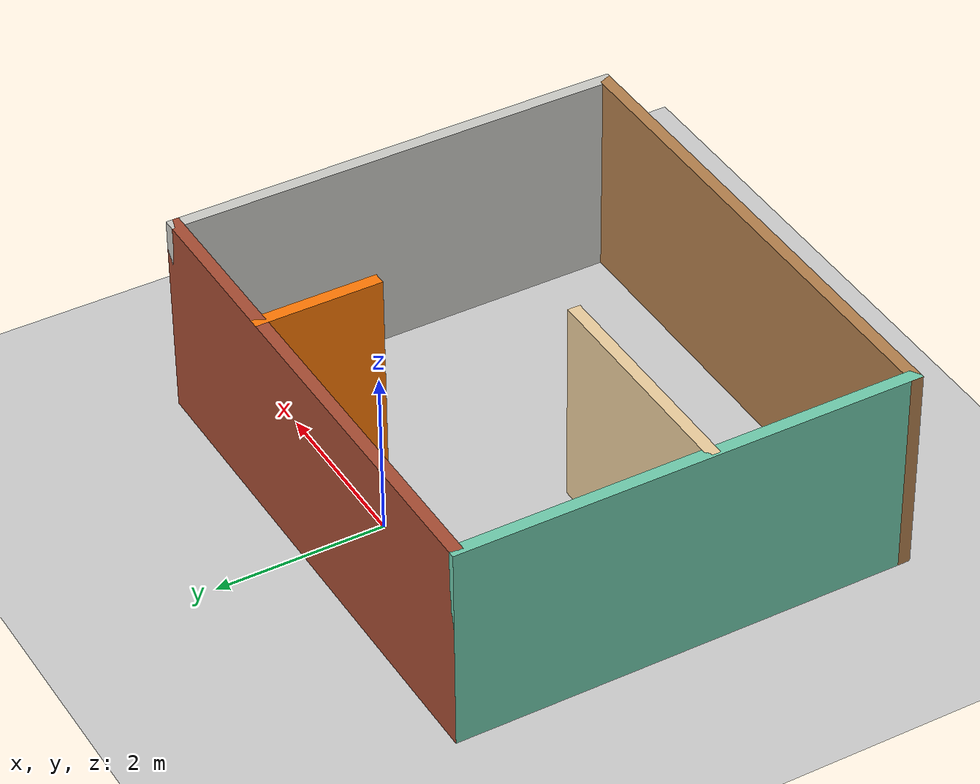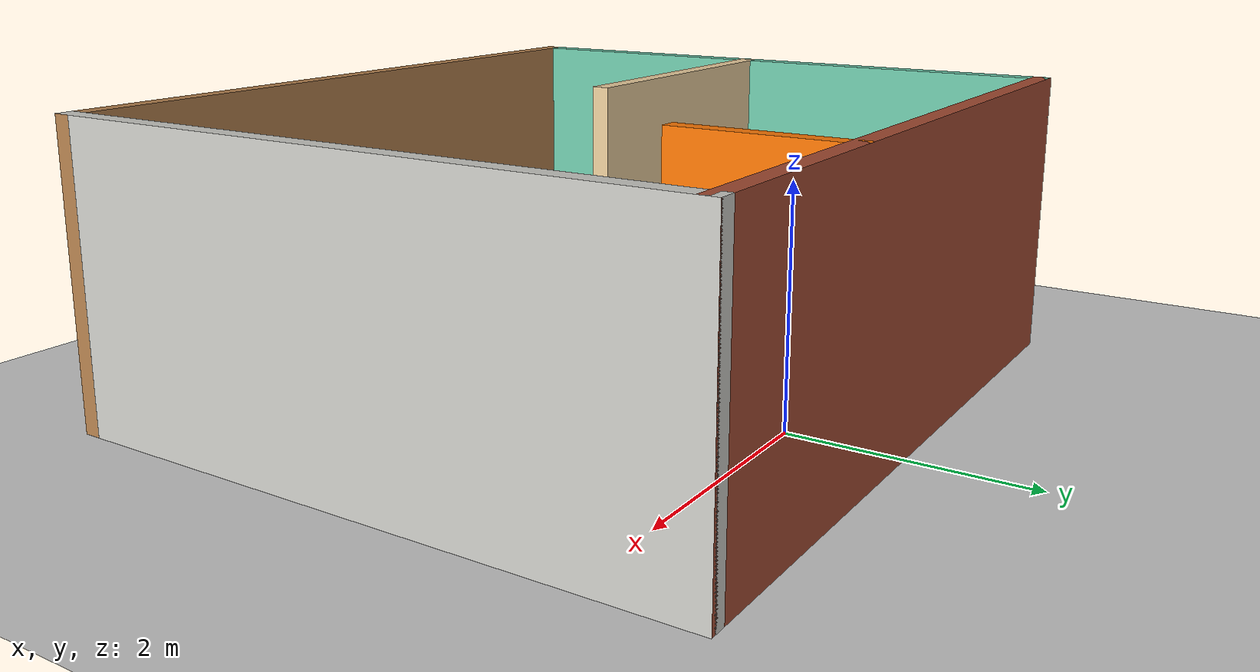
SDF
<sdf version="1.7">
 <world name="default">
  <light name="sun" type="directional">
   <pose>0 0 10 0 -0 0</pose>
   <diffuse>0.8 0.8 0.8 1</diffuse>
   <specular>0.2 0.2 0.2 1</specular>
   <attenuation>
    <range>1000</range>
    <constant>0.9</constant>
    <linear>0.01</linear>
    <quadratic>0.001</quadratic>
   </attenuation>
   <direction>-0.5 0.1 -0.9</direction>
   <spot><inner_angle>0</inner_angle><outer_angle>0</outer_angle><falloff>0</falloff></spot>
  </light>
  <model name="ground_plane">
   <static>1</static>
   <link name="link">
    <collision name="collision">
     <geometry><plane><normal>0 0 1</normal><size>100 100</size></plane></geometry>
     <surface>
      <contact><collide_bitmask>65535</collide_bitmask></contact>
      <friction><ode><mu>100</mu><mu2>50</mu2></ode></friction>
     </surface>
    </collision>
    <visual name="visual">
     <cast_shadows>0</cast_shadows>
     <geometry><plane><normal>0 0 1</normal><size>100 100</size></plane></geometry>
     <material>
      <script><uri>file://media/materials/scripts/gazebo.material</uri><name>Gazebo/Grey</name></script>
     </material>
    </visual>
   </link>
  </model>
  <gravity>0 0 -9.8</gravity>
  <magnetic_field>6e-06 2.3e-05 -4.2e-05</magnetic_field>
  <atmosphere type="adiabatic"/>
  <physics type="ode">
   <max_step_size>0.001</max_step_size>
   <real_time_factor>1</real_time_factor>
   <real_time_update_rate>1000</real_time_update_rate>
  </physics>
  <scene><ambient>0.4 0.4 0.4 1</ambient><background>0.7 0.7 0.7 1</background><shadows>1</shadows></scene>
  <audio><device>default</device></audio>
  <spherical_coordinates>
   <surface_model>EARTH_WGS84</surface_model>
   <latitude_deg>0</latitude_deg>
   <longitude_deg>0</longitude_deg>
   <elevation>0</elevation>
   <heading_deg>0</heading_deg>
  </spherical_coordinates>
  <model name="Untitled_0">
   <pose>-0.156988 -1.78325 0 0 -0 0</pose>
   <link name="Wall_10">
    <collision name="Wall_10_Collision">
     <geometry><box><size>6.25 0.15 2.5</size></box></geometry>
     <pose>0 0 1.25 0 -0 0</pose>
    </collision>
    <visual name="Wall_10_Visual">
     <pose>0 0 1.25 0 -0 0</pose>
     <geometry><box><size>6.25 0.15 2.5</size></box></geometry>
     <material>
      <script><uri>file://media/materials/scripts/gazebo.material</uri><name>Gazebo/Bricks</name></script>
      <ambient>1 1 1 1</ambient>
     </material>
     <meta><layer>0</layer></meta>
    </visual>
    <pose>0 2.675 0 0 -0 0</pose>
   </link>
   <link name="Wall_11">
    <collision name="Wall_11_Collision">
     <geometry><box><size>5.5 0.15 2.5</size></box></geometry>
     <pose>0 0 1.25 0 -0 0</pose>
    </collision>
    <visual name="Wall_11_Visual">
     <pose>0 0 1.25 0 -0 0</pose>
     <geometry><box><size>5.5 0.15 2.5</size></box></geometry>
     <material>
      <script><uri>file://media/materials/scripts/gazebo.material</uri><name>Gazebo/CeilingTiled</name></script>
      <ambient>1 1 1 1</ambient>
     </material>
     <meta><layer>0</layer></meta>
    </visual>
    <pose>3.05 0 0 0 -0 -1.5708</pose>
   </link>
   <link name="Wall_12">
    <collision name="Wall_12_Collision">
     <geometry><box><size>6.25 0.15 2.5</size></box></geometry>
     <pose>0 0 1.25 0 -0 0</pose>
    </collision>
    <visual name="Wall_12_Visual">
     <pose>0 0 1.25 0 -0 0</pose>
     <geometry><box><size>6.25 0.15 2.5</size></box></geometry>
     <material>
      <script><uri>file://media/materials/scripts/gazebo.material</uri><name>Gazebo/Wood</name></script>
      <ambient>1 1 1 1</ambient>
     </material>
     <meta><layer>0</layer></meta>
    </visual>
    <pose>0 -2.675 0 0 -0 3.14159</pose>
   </link>
   <link name="Wall_15">
    <collision name="Wall_15_Collision">
     <geometry><box><size>2.75 0.15 2.5</size></box></geometry>
     <pose>0 0 1.25 0 -0 0</pose>
    </collision>
    <visual name="Wall_15_Visual">
     <pose>0 0 1.25 0 -0 0</pose>
     <geometry><box><size>2.75 0.15 2.5</size></box></geometry>
     <material>
      <script><uri>file://media/materials/scripts/gazebo.material</uri><name>Gazebo/Grey</name></script>
      <ambient>0.921569 0.807843 0.615686 1</ambient>
     </material>
     <meta><layer>0</layer></meta>
    </visual>
    <pose>-1.71958 -0.256809 0 0 -0 0</pose>
   </link>
   <link name="Wall_17">
    <collision name="Wall_17_Collision">
     <geometry><box><size>1.5 0.15 2.5</size></box></geometry>
     <pose>0 0 1.25 0 -0 0</pose>
    </collision>
    <visual name="Wall_17_Visual">
     <pose>0 0 1.25 0 -0 0</pose>
     <geometry><box><size>1.5 0.15 2.5</size></box></geometry>
     <material>
      <script><uri>file://media/materials/scripts/gazebo.material</uri><name>Gazebo/Grey</name></script>
      <ambient>0.996078 0.47451 0.0196078 1</ambient>
     </material>
     <meta><layer>0</layer></meta>
    </visual>
    <pose>1.10896 1.99991 0 0 -0 -1.5708</pose>
   </link>
   <link name="Wall_9">
    <collision name="Wall_9_Collision">
     <geometry><box><size>5.5 0.15 2.5</size></box></geometry>
     <pose>0 0 1.25 0 -0 0</pose>
    </collision>
    <visual name="Wall_9_Visual">
     <pose>0 0 1.25 0 -0 0</pose>
     <geometry><box><size>5.5 0.15 2.5</size></box></geometry>
     <material>
      <script><uri>file://media/materials/scripts/gazebo.material</uri><name>Gazebo/Grey</name></script>
      <ambient>0.435294 0.796078 0.67451 1</ambient>
     </material>
     <meta><layer>0</layer></meta>
    </visual>
    <pose>-3.05 0 0 0 -0 1.5708</pose>
   </link>
   <static>1</static>
  </model>
 </world>
</sdf>
